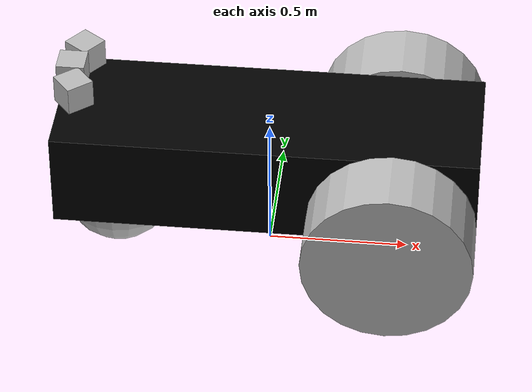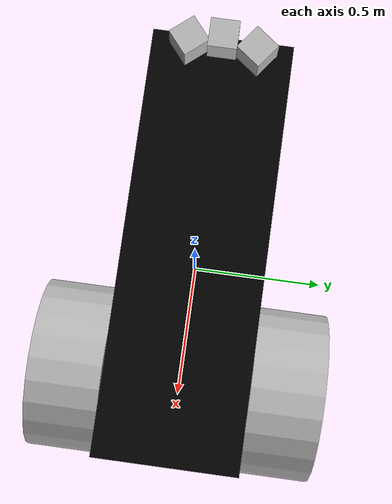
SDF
<?xml version='1.0'?>
<sdf version='1.6'>
  <model name='Tcar55'>
    <link name='caster'>
      <inertial>
        <mass>1</mass>
        <inertia>
          <ixx>0.1</ixx>
          <ixy>0</ixy>
          <ixz>0</ixz>
          <iyy>0.1</iyy>
          <iyz>0</iyz>
          <izz>0.1</izz>
        </inertia>
        <pose frame=''>0 0 0 0 -0 0</pose>
      </inertial>
      <pose frame=''>-0.55 0 0.2 0 -0 0</pose>
      <self_collide>0</self_collide>
      <enable_wind>0</enable_wind>
      <kinematic>0</kinematic>
      <visual name='visual'>
        <geometry>
          <sphere>
            <radius>0.2</radius>
          </sphere>
        </geometry>
        <material>
          <shader type='pixel'/>
          <emissive>0 0 0 1</emissive>
        </material>
        <pose frame=''>0 0 0 0 -0 0</pose>
        <transparency>0</transparency>
        <cast_shadows>1</cast_shadows>
      </visual>
      <collision name='collision'>
        <laser_retro>0</laser_retro>
        <max_contacts>10</max_contacts>
        <pose frame=''>0 0 0 0 -0 0</pose>
        <geometry>
          <sphere>
            <radius>0.2</radius>
          </sphere>
        </geometry>
        <surface>
          <friction>
            <ode>
              <mu>1</mu>
              <mu2>1</mu2>
              <fdir1>0 0 0</fdir1>
              <slip1>0</slip1>
              <slip2>0</slip2>
            </ode>
            <torsional>
              <coefficient>1</coefficient>
              <patch_radius>0</patch_radius>
              <surface_radius>0</surface_radius>
              <use_patch_radius>1</use_patch_radius>
              <ode>
                <slip>0</slip>
              </ode>
            </torsional>
          </friction>
          <bounce>
            <restitution_coefficient>0</restitution_coefficient>
            <threshold>1e+06</threshold>
          </bounce>
          <contact>
            <collide_without_contact>0</collide_without_contact>
            <collide_without_contact_bitmask>1</collide_without_contact_bitmask>
            <collide_bitmask>1</collide_bitmask>
            <ode>
              <soft_cfm>0</soft_cfm>
              <soft_erp>0.2</soft_erp>
              <kp>1e+13</kp>
              <kd>1</kd>
              <max_vel>0.01</max_vel>
              <min_depth>0</min_depth>
            </ode>
            <bullet>
              <split_impulse>1</split_impulse>
              <split_impulse_penetration_threshold>-0.01</split_impulse_penetration_threshold>
              <soft_cfm>0</soft_cfm>
              <soft_erp>0.2</soft_erp>
              <kp>1e+13</kp>
              <kd>1</kd>
            </bullet>
          </contact>
        </surface>
      </collision>
    </link>
    <link name='left_wheel'>
      <inertial>
        <mass>1</mass>
        <inertia>
          <ixx>0.145833</ixx>
          <ixy>0</ixy>
          <ixz>0</ixz>
          <iyy>0.145833</iyy>
          <iyz>0</iyz>
          <izz>0.125</izz>
        </inertia>
        <pose frame=''>0 0 0 0 -0 0</pose>
      </inertial>
      <pose frame=''>0.45 -0.375029 0.3 1.5707 -0 0</pose>
      <self_collide>0</self_collide>
      <enable_wind>0</enable_wind>
      <kinematic>0</kinematic>
      <visual name='visual'>
        <geometry>
          <cylinder>
            <radius>0.3</radius>
            <length>0.25</length>
          </cylinder>
        </geometry>
        <material>
          <shader type='pixel'/>
        </material>
        <pose frame=''>0 0 0 0 -0 0</pose>
        <transparency>0</transparency>
        <cast_shadows>1</cast_shadows>
      </visual>
      <collision name='collision'>
        <laser_retro>0</laser_retro>
        <max_contacts>10</max_contacts>
        <pose frame=''>0 0 0 0 -0 0</pose>
        <geometry>
          <cylinder>
            <radius>0.3</radius>
            <length>0.25</length>
          </cylinder>
        </geometry>
        <surface>
          <friction>
            <ode>
              <mu>1</mu>
              <mu2>1</mu2>
              <fdir1>0 0 0</fdir1>
              <slip1>0</slip1>
              <slip2>0</slip2>
            </ode>
            <torsional>
              <coefficient>1</coefficient>
              <patch_radius>0</patch_radius>
              <surface_radius>0</surface_radius>
              <use_patch_radius>1</use_patch_radius>
              <ode>
                <slip>0</slip>
              </ode>
            </torsional>
          </friction>
          <bounce>
            <restitution_coefficient>0</restitution_coefficient>
            <threshold>1e+06</threshold>
          </bounce>
          <contact>
            <collide_without_contact>0</collide_without_contact>
            <collide_without_contact_bitmask>1</collide_without_contact_bitmask>
            <collide_bitmask>1</collide_bitmask>
            <ode>
              <soft_cfm>0</soft_cfm>
              <soft_erp>0.2</soft_erp>
              <kp>1e+13</kp>
              <kd>1</kd>
              <max_vel>0.01</max_vel>
              <min_depth>0</min_depth>
            </ode>
            <bullet>
              <split_impulse>1</split_impulse>
              <split_impulse_penetration_threshold>-0.01</split_impulse_penetration_threshold>
              <soft_cfm>0</soft_cfm>
              <soft_erp>0.2</soft_erp>
              <kp>1e+13</kp>
              <kd>1</kd>
            </bullet>
          </contact>
        </surface>
      </collision>
    </link>
    <link name='mbody'>
      <inertial>
        <mass>0.5</mass>
        <inertia>
          <ixx>0.0287018</ixx>
          <ixy>0</ixy>
          <ixz>0</ixz>
          <iyy>0.0850413</iyy>
          <iyz>0</iyz>
          <izz>0.0951773</izz>
        </inertia>
        <pose frame=''>0 0 0 0 -0 0</pose>
      </inertial>
      <pose frame=''>0 0 0.4 0 -0 0</pose>
      <self_collide>0</self_collide>
      <enable_wind>0</enable_wind>
      <kinematic>0</kinematic>
      <gravity>1</gravity>
      <visual name='visual'>
        <geometry>
          <box>
            <size>1.5 0.5 0.35</size>
          </box>
        </geometry>
        <material>
          <shader type='pixel'>
            <normal_map>__default__</normal_map>
          </shader>
          <emissive>0 0 0 1</emissive>
          <script>
            <name>ModelPreview_1::mbody::visual_MATERIAL_</name>
            <uri>__default__</uri>
          </script>
          <ambient>0 0 0 1</ambient>
          <diffuse>0 0 0 1</diffuse>
          <specular>0 0 0 1</specular>
        </material>
        <pose frame=''>0 0 0 0 -0 0</pose>
        <transparency>0</transparency>
        <cast_shadows>1</cast_shadows>
      </visual>
      <collision name='collision'>
        <laser_retro>0</laser_retro>
        <max_contacts>10</max_contacts>
        <pose frame=''>0 0 0 0 -0 0</pose>
        <geometry>
          <box>
            <size>1.5 0.5 0.35</size>
          </box>
        </geometry>
        <surface>
          <friction>
            <ode>
              <mu>1</mu>
              <mu2>1</mu2>
              <fdir1>0 0 0</fdir1>
              <slip1>0</slip1>
              <slip2>0</slip2>
            </ode>
            <torsional>
              <coefficient>1</coefficient>
              <patch_radius>0</patch_radius>
              <surface_radius>0</surface_radius>
              <use_patch_radius>1</use_patch_radius>
              <ode>
                <slip>0</slip>
              </ode>
            </torsional>
          </friction>
          <bounce>
            <restitution_coefficient>0</restitution_coefficient>
            <threshold>1e+06</threshold>
          </bounce>
          <contact>
            <collide_without_contact>0</collide_without_contact>
            <collide_without_contact_bitmask>1</collide_without_contact_bitmask>
            <collide_bitmask>1</collide_bitmask>
            <ode>
              <soft_cfm>0</soft_cfm>
              <soft_erp>0.2</soft_erp>
              <kp>1e+13</kp>
              <kd>1</kd>
              <max_vel>0.01</max_vel>
              <min_depth>0</min_depth>
            </ode>
            <bullet>
              <split_impulse>1</split_impulse>
              <split_impulse_penetration_threshold>-0.01</split_impulse_penetration_threshold>
              <soft_cfm>0</soft_cfm>
              <soft_erp>0.2</soft_erp>
              <kp>1e+13</kp>
              <kd>1</kd>
            </bullet>
          </contact>
        </surface>
      </collision>
    </link>
    <link name='right_wheel'>
      <inertial>
        <mass>1</mass>
        <inertia>
          <ixx>0.145833</ixx>
          <ixy>0</ixy>
          <ixz>0</ixz>
          <iyy>0.145833</iyy>
          <iyz>0</iyz>
          <izz>0.125</izz>
        </inertia>
        <pose frame=''>0 0 0 0 -0 0</pose>
      </inertial>
      <pose frame=''>0.45 0.375029 0.3 1.5707 -0 0</pose>
      <self_collide>0</self_collide>
      <enable_wind>0</enable_wind>
      <kinematic>0</kinematic>
      <visual name='visual'>
        <geometry>
          <cylinder>
            <radius>0.3</radius>
            <length>0.25</length>
          </cylinder>
        </geometry>
        <material>
          <shader type='pixel'/>
        </material>
        <pose frame=''>0 0 0 0 -0 0</pose>
        <transparency>0</transparency>
        <cast_shadows>1</cast_shadows>
      </visual>
      <collision name='collision'>
        <laser_retro>0</laser_retro>
        <max_contacts>10</max_contacts>
        <pose frame=''>0 0 0 0 -0 0</pose>
        <geometry>
          <cylinder>
            <radius>0.3</radius>
            <length>0.25</length>
          </cylinder>
        </geometry>
        <surface>
          <friction>
            <ode>
              <mu>1</mu>
              <mu2>1</mu2>
              <fdir1>0 0 0</fdir1>
              <slip1>0</slip1>
              <slip2>0</slip2>
            </ode>
            <torsional>
              <coefficient>1</coefficient>
              <patch_radius>0</patch_radius>
              <surface_radius>0</surface_radius>
              <use_patch_radius>1</use_patch_radius>
              <ode>
                <slip>0</slip>
              </ode>
            </torsional>
          </friction>
          <bounce>
            <restitution_coefficient>0</restitution_coefficient>
            <threshold>1e+06</threshold>
          </bounce>
          <contact>
            <collide_without_contact>0</collide_without_contact>
            <collide_without_contact_bitmask>1</collide_without_contact_bitmask>
            <collide_bitmask>1</collide_bitmask>
            <ode>
              <soft_cfm>0</soft_cfm>
              <soft_erp>0.2</soft_erp>
              <kp>1e+13</kp>
              <kd>1</kd>
              <max_vel>0.01</max_vel>
              <min_depth>0</min_depth>
            </ode>
            <bullet>
              <split_impulse>1</split_impulse>
              <split_impulse_penetration_threshold>-0.01</split_impulse_penetration_threshold>
              <soft_cfm>0</soft_cfm>
              <soft_erp>0.2</soft_erp>
              <kp>1e+13</kp>
              <kd>1</kd>
            </bullet>
          </contact>
        </surface>
      </collision>
    </link>
    <model name='camera'>
      <pose frame=''>-0.698828 0.002571 0.70013 0 -0 3.14132</pose>
      <link name='link'>
        <inertial>
          <mass>0.1</mass>
          <inertia>
            <ixx>0.000166667</ixx>
            <iyy>0.000166667</iyy>
            <izz>0.000166667</izz>
            <ixy>0</ixy>
            <ixz>0</ixz>
            <iyz>0</iyz>
          </inertia>
          <pose frame=''>0 0 0 0 -0 0</pose>
        </inertial>
        <collision name='collision'>
          <geometry>
            <box>
              <size>0.1 0.1 0.1</size>
            </box>
          </geometry>
          <max_contacts>10</max_contacts>
          <surface>
            <contact>
              <ode/>
            </contact>
            <bounce/>
            <friction>
              <torsional>
                <ode/>
              </torsional>
              <ode/>
            </friction>
          </surface>
        </collision>
        <visual name='visual'>
          <geometry>
            <box>
              <size>0.1 0.1 0.1</size>
            </box>
          </geometry>
        </visual>
        <sensor name='camera' type='camera'>
          <camera name='__default__'>
            <horizontal_fov>1.047</horizontal_fov>
            <image>
              <width>320</width>
              <height>240</height>
            </image>
            <clip>
              <near>0.1</near>
              <far>100</far>
            </clip>
          </camera>
          <always_on>1</always_on>
          <update_rate>30</update_rate>
          <visualize>1</visualize>
          <plugin name='camf' filename='libgazebo_ros_camera.so'>
            <ros>
              <namespace>/cam</namespace>
              <argument>image_raw:=custom_img</argument>
              <argument>camera_info:=custom_info</argument>
            </ros>
            <camera_name>front_camera</camera_name>
            <frame_name>front_frame</frame_name>
            <hack_baseline>0.07</hack_baseline>
          </plugin>
        </sensor>
        <self_collide>0</self_collide>
        <enable_wind>0</enable_wind>
        <kinematic>0</kinematic>
      </link>
    </model>
    <model name='camera_0'>
      <pose frame=''>-0.671542 0.121042 0.694541 0 0 0.924385</pose>
      <link name='link'>
        <inertial>
          <mass>0.1</mass>
          <inertia>
            <ixx>0.000166667</ixx>
            <iyy>0.000166667</iyy>
            <izz>0.000166667</izz>
            <ixy>0</ixy>
            <ixz>0</ixz>
            <iyz>0</iyz>
          </inertia>
          <pose frame=''>0 0 0 0 -0 0</pose>
        </inertial>
        <collision name='collision'>
          <geometry>
            <box>
              <size>0.1 0.1 0.1</size>
            </box>
          </geometry>
          <max_contacts>10</max_contacts>
          <surface>
            <contact>
              <ode/>
            </contact>
            <bounce/>
            <friction>
              <torsional>
                <ode/>
              </torsional>
              <ode/>
            </friction>
          </surface>
        </collision>
        <visual name='visual'>
          <geometry>
            <box>
              <size>0.1 0.1 0.1</size>
            </box>
          </geometry>
        </visual>
        <sensor name='camera' type='camera'>
          <camera name='__default__'>
            <horizontal_fov>1.047</horizontal_fov>
            <image>
              <width>320</width>
              <height>240</height>
            </image>
            <clip>
              <near>0.1</near>
              <far>100</far>
            </clip>
          </camera>
          <always_on>1</always_on>
          <update_rate>30</update_rate>
          <visualize>1</visualize>
          <plugin name='caml' filename='libgazebo_ros_camera.so'>
            <ros>
              <namespace>/cam</namespace>
              <argument>image_raw:=custom_img</argument>
              <argument>camera_info:=custom_info</argument>
            </ros>
            <camera_name>right_camera</camera_name>
            <frame_name>right_frame</frame_name>
            <hack_baseline>0.07</hack_baseline>
          </plugin>
        </sensor>
        <self_collide>0</self_collide>
        <enable_wind>0</enable_wind>
        <kinematic>0</kinematic>
      </link>
    </model>
    <model name='camera_1'>
      <pose frame=''>-0.677174 -0.111482 0.697947 0 0 -0.876466</pose>
      <link name='link'>
        <inertial>
          <mass>0.1</mass>
          <inertia>
            <ixx>0.000166667</ixx>
            <iyy>0.000166667</iyy>
            <izz>0.000166667</izz>
            <ixy>0</ixy>
            <ixz>0</ixz>
            <iyz>0</iyz>
          </inertia>
          <pose frame=''>0 0 0 0 -0 0</pose>
        </inertial>
        <collision name='collision'>
          <geometry>
            <box>
              <size>0.1 0.1 0.1</size>
            </box>
          </geometry>
          <max_contacts>10</max_contacts>
          <surface>
            <contact>
              <ode/>
            </contact>
            <bounce/>
            <friction>
              <torsional>
                <ode/>
              </torsional>
              <ode/>
            </friction>
          </surface>
        </collision>
        <visual name='visual'>
          <geometry>
            <box>
              <size>0.1 0.1 0.1</size>
            </box>
          </geometry>
        </visual>
        <sensor name='camera' type='camera'>
          <camera name='__default__'>
            <horizontal_fov>1.047</horizontal_fov>
            <image>
              <width>320</width>
              <height>240</height>
            </image>
            <clip>
              <near>0.1</near>
              <far>100</far>
            </clip>
          </camera>
          <always_on>1</always_on>
          <update_rate>30</update_rate>
          <visualize>1</visualize>
          <plugin name='camr' filename='libgazebo_ros_camera.so'>
            <ros>
              <namespace>/cam</namespace>
              <argument>image_raw:=custom_img</argument>
              <argument>camera_info:=custom_info</argument>
            </ros>
            <camera_name>left_camera</camera_name>
            <frame_name>left_frame</frame_name>
            <hack_baseline>0.07</hack_baseline>
          </plugin>
        </sensor>
        <self_collide>0</self_collide>
        <enable_wind>0</enable_wind>
        <kinematic>0</kinematic>
      </link>
    </model>
    <joint name='c_joint' type='fixed'>
      <parent>mbody</parent>
      <child>camera::link</child>
      <pose frame=''>0 0 0 0 -0 0</pose>
      <physics>
        <ode>
          <limit>
            <cfm>0</cfm>
            <erp>0.2</erp>
          </limit>
          <suspension>
            <cfm>0</cfm>
            <erp>0.2</erp>
          </suspension>
        </ode>
      </physics>
    </joint>
    <joint name='link_JOINT_1' type='fixed'>
      <parent>camera::link</parent>
      <child>camera_0::link</child>
      <pose frame=''>0 0 0 0 -0 0</pose>
      <physics>
        <ode>
          <limit>
            <cfm>0</cfm>
            <erp>0.2</erp>
          </limit>
          <suspension>
            <cfm>0</cfm>
            <erp>0.2</erp>
          </suspension>
        </ode>
      </physics>
    </joint>
    <joint name='link_JOINT_2' type='fixed'>
      <parent>camera::link</parent>
      <child>camera_1::link</child>
      <pose frame=''>0 0 0 0 -0 0</pose>
      <physics>
        <ode>
          <limit>
            <cfm>0</cfm>
            <erp>0.2</erp>
          </limit>
          <suspension>
            <cfm>0</cfm>
            <erp>0.2</erp>
          </suspension>
        </ode>
      </physics>
    </joint>
    <joint name='left_joint' type='revolute'>
      <parent>mbody</parent>
      <child>left_wheel</child>
      <pose frame=''>0 0 0 0 -0 0</pose>
      <axis>
        <xyz>0 0 1</xyz>
        <use_parent_model_frame>0</use_parent_model_frame>
        <limit>
          <lower>-1.79769e+308</lower>
          <upper>1.79769e+308</upper>
          <effort>-1</effort>
          <velocity>-1</velocity>
        </limit>
        <dynamics>
          <spring_reference>0</spring_reference>
          <spring_stiffness>0</spring_stiffness>
          <damping>0</damping>
          <friction>0</friction>
        </dynamics>
      </axis>
      <physics>
        <ode>
          <limit>
            <cfm>0</cfm>
            <erp>0.2</erp>
          </limit>
          <suspension>
            <cfm>0</cfm>
            <erp>0.2</erp>
          </suspension>
        </ode>
      </physics>
    </joint>
    <joint name='mbody_JOINT_0_0' type='fixed'>
      <parent>mbody</parent>
      <child>camera_1::link</child>
      <pose frame=''>0 0 0 0 -0 0</pose>
      <physics>
        <ode>
          <limit>
            <cfm>0</cfm>
            <erp>0.2</erp>
          </limit>
          <suspension>
            <cfm>0</cfm>
            <erp>0.2</erp>
          </suspension>
        </ode>
      </physics>
    </joint>
    <joint name='mbody_JOINT_0' type='ball'>
      <parent>mbody</parent>
      <child>caster</child>
      <pose frame=''>0 0 0 0 -0 0</pose>
      <physics>
        <ode>
          <limit>
            <cfm>0</cfm>
            <erp>0.2</erp>
          </limit>
          <suspension>
            <cfm>0</cfm>
            <erp>0.2</erp>
          </suspension>
        </ode>
      </physics>
    </joint>
    <joint name='mbody_JOINT_1' type='fixed'>
      <parent>mbody</parent>
      <child>camera_0::link</child>
      <pose frame=''>0 0 0 0 -0 0</pose>
      <physics>
        <ode>
          <limit>
            <cfm>0</cfm>
            <erp>0.2</erp>
          </limit>
          <suspension>
            <cfm>0</cfm>
            <erp>0.2</erp>
          </suspension>
        </ode>
      </physics>
    </joint>
    <joint name='right_joint' type='revolute'>
      <parent>mbody</parent>
      <child>right_wheel</child>
      <pose frame=''>0 0 0 0 -0 0</pose>
      <axis>
        <xyz>0 0 1</xyz>
        <use_parent_model_frame>0</use_parent_model_frame>
        <limit>
          <lower>-1.79769e+308</lower>
          <upper>1.79769e+308</upper>
          <effort>-1</effort>
          <velocity>-1</velocity>
        </limit>
        <dynamics>
          <spring_reference>0</spring_reference>
          <spring_stiffness>0</spring_stiffness>
          <damping>0</damping>
          <friction>0</friction>
        </dynamics>
      </axis>
      <physics>
        <ode>
          <limit>
            <cfm>0</cfm>
            <erp>0.2</erp>
          </limit>
          <suspension>
            <cfm>0</cfm>
            <erp>0.2</erp>
          </suspension>
        </ode>
      </physics>
    </joint>
    <static>0</static>
    <allow_auto_disable>1</allow_auto_disable>
    <!--plugin name='camera' filename='libgazebo_ros_camera.so'/-->
    <plugin name='diff_drive' filename='libgazebo_ros_diff_drive.so'>
        <ros>
          <namespace>/pos</namespace>
          <argument>cmd_vel:=cmd_pos</argument>
          <argument>odom:=odom_pos</argument>
        </ros>
        <left_joint>left_joint</left_joint>
        <right_joint>right_joint</right_joint>
        <wheel_separation>1.25</wheel_separation>
        <wheel_diameter>0.6</wheel_diameter>
        <max_wheel_torque>20</max_wheel_torque>
        <max_wheel_acceleration>1.0</max_wheel_acceleration>
        <publish_odom>1</publish_odom>
        <publish_odom_tf>1</publish_odom_tf>
        <publish_wheel_tf>1</publish_wheel_tf>
        <odometry_frame>odom_demo</odometry_frame>
        <robot_base_frame>chassis</robot_base_frame>
      </plugin>
  </model>
</sdf>
